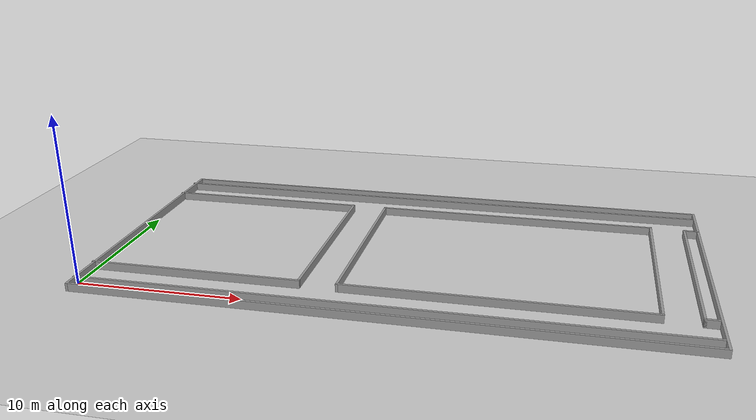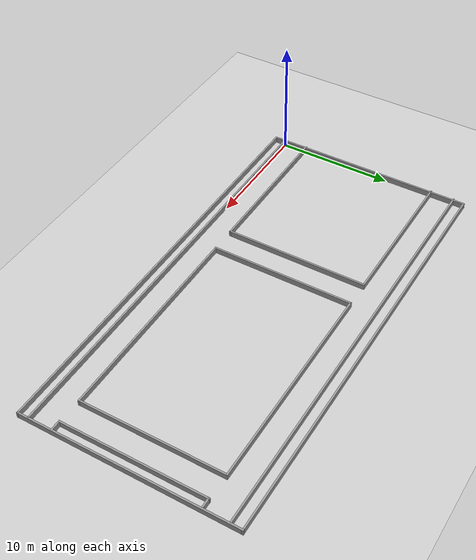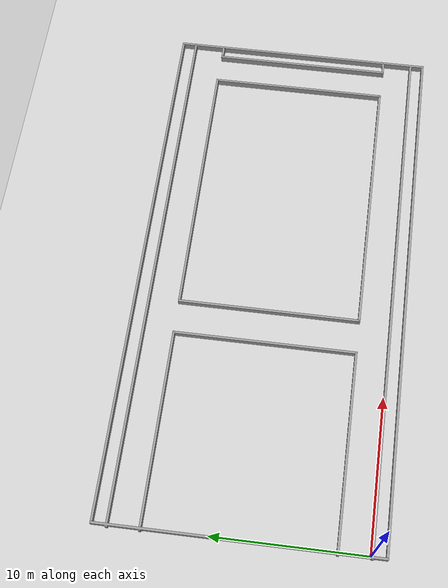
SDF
<sdf version="1.7">
 <world name="default">
  <light name="sun" type="directional">
   <pose>0 0 10 0 -0 0</pose>
   <diffuse>0.8 0.8 0.8 1</diffuse>
   <specular>0.2 0.2 0.2 1</specular>
   <attenuation>
    <range>1000</range>
    <constant>0.9</constant>
    <linear>0.01</linear>
    <quadratic>0.001</quadratic>
   </attenuation>
   <direction>-0.5 0.1 -0.9</direction>
   <spot><inner_angle>0</inner_angle><outer_angle>0</outer_angle><falloff>0</falloff></spot>
  </light>
  <model name="ground_plane">
   <static>1</static>
   <link name="link">
    <collision name="collision">
     <geometry><plane><normal>0 0 1</normal><size>100 100</size></plane></geometry>
     <surface>
      <contact><collide_bitmask>65535</collide_bitmask></contact>
      <friction><ode><mu>100</mu><mu2>50</mu2></ode></friction>
     </surface>
    </collision>
    <visual name="visual">
     <cast_shadows>0</cast_shadows>
     <geometry><plane><normal>0 0 1</normal><size>100 100</size></plane></geometry>
     <material>
      <script><uri>file://media/materials/scripts/gazebo.material</uri><name>Gazebo/Grey</name></script>
     </material>
    </visual>
   </link>
  </model>
  <gravity>0 0 -9.8</gravity>
  <magnetic_field>6e-06 2.3e-05 -4.2e-05</magnetic_field>
  <atmosphere type="adiabatic"/>
  <physics type="ode">
   <max_step_size>0.001</max_step_size>
   <real_time_factor>1</real_time_factor>
   <real_time_update_rate>1000</real_time_update_rate>
  </physics>
  <scene><ambient>0.4 0.4 0.4 1</ambient><background>0.7 0.7 0.7 1</background><shadows>1</shadows></scene>
  <spherical_coordinates>
   <surface_model>EARTH_WGS84</surface_model>
   <latitude_deg>0</latitude_deg>
   <longitude_deg>0</longitude_deg>
   <elevation>0</elevation>
   <heading_deg>0</heading_deg>
  </spherical_coordinates>
  <model name="vfeld.world">
   <pose>17.7996 8.0835 -1 0 -0 0</pose>
   <link name="Wall_10">
    <collision name="Wall_10_Collision">
     <geometry><box><size>18.25 0.15 0.5</size></box></geometry>
     <pose>0 0 1.25 0 -0 0</pose>
    </collision>
    <visual name="Wall_10_Visual">
     <pose>0 0 1.25 0 -0 0</pose>
     <geometry><box><size>18.25 0.15 0.5</size></box></geometry>
     <material>
      <script><uri>file://media/materials/scripts/gazebo.material</uri><name>Gazebo/Grey</name></script>
      <ambient>1 1 1 1</ambient>
     </material>
     <meta><layer>0</layer></meta>
    </visual>
    <pose>17.9754 0 0 0 -0 -1.5708</pose>
   </link>
   <link name="Wall_11">
    <collision name="Wall_11_Collision">
     <geometry><box><size>36 0.15 0.5</size></box></geometry>
     <pose>0 0 1.25 0 -0 0</pose>
    </collision>
    <visual name="Wall_11_Visual">
     <pose>0 0 1.25 0 -0 0</pose>
     <geometry><box><size>36 0.15 0.5</size></box></geometry>
     <material>
      <script><uri>file://media/materials/scripts/gazebo.material</uri><name>Gazebo/Grey</name></script>
      <ambient>1 1 1 1</ambient>
     </material>
     <meta><layer>0</layer></meta>
    </visual>
    <pose>0.050444 -9.05 0 0 -0 3.14159</pose>
   </link>
   <link name="Wall_12">
    <collision name="Wall_12_Collision">
     <geometry><box><size>18.25 0.15 0.5</size></box></geometry>
     <pose>0 0 1.25 0 -0 0</pose>
    </collision>
    <visual name="Wall_12_Visual">
     <pose>0 0 1.25 0 -0 0</pose>
     <geometry><box><size>18.25 0.15 0.5</size></box></geometry>
     <material>
      <script><uri>file://media/materials/scripts/gazebo.material</uri><name>Gazebo/Grey</name></script>
      <ambient>1 1 1 1</ambient>
     </material>
     <meta><layer>0</layer></meta>
    </visual>
    <pose>-17.8746 0 0 0 -0 1.5708</pose>
   </link>
   <link name="Wall_13">
    <collision name="Wall_13_Collision">
     <geometry><box><size>36 0.15 0.5</size></box></geometry>
     <pose>0 0 1.25 0 -0 0</pose>
    </collision>
    <visual name="Wall_13_Visual">
     <pose>0 0 1.25 0 -0 0</pose>
     <geometry><box><size>36 0.15 0.5</size></box></geometry>
     <material>
      <script><uri>file://media/materials/scripts/gazebo.material</uri><name>Gazebo/Grey</name></script>
      <ambient>1 1 1 1</ambient>
     </material>
     <meta><layer>0</layer></meta>
    </visual>
    <pose>0.050444 9.05 0 0 -0 0</pose>
   </link>
   <link name="Wall_15">
    <collision name="Wall_15_Collision">
     <geometry><box><size>36 0.15 0.5</size></box></geometry>
     <pose>0 0 1.25 0 -0 0</pose>
    </collision>
    <visual name="Wall_15_Visual">
     <pose>0 0 1.25 0 -0 0</pose>
     <geometry><box><size>36 0.15 0.5</size></box></geometry>
     <material>
      <script><uri>file://media/materials/scripts/gazebo.material</uri><name>Gazebo/Grey</name></script>
      <ambient>1 1 1 1</ambient>
     </material>
     <meta><layer>0</layer></meta>
    </visual>
    <pose>-0.050445 8.09916 0 0 -0 0</pose>
   </link>
   <link name="Wall_17">
    <collision name="Wall_17_Collision">
     <geometry><box><size>13 0.15 0.5</size></box></geometry>
     <pose>0 0 1.25 0 -0 0</pose>
    </collision>
    <visual name="Wall_17_Visual">
     <pose>0 0 1.25 0 -0 0</pose>
     <geometry><box><size>13 0.15 0.5</size></box></geometry>
     <material>
      <script><uri>file://media/materials/scripts/gazebo.material</uri><name>Gazebo/Grey</name></script>
      <ambient>1 1 1 1</ambient>
     </material>
     <meta><layer>0</layer></meta>
    </visual>
    <pose>-11.5363 6.04108 0 0 -0 0</pose>
   </link>
   <link name="Wall_18">
    <collision name="Wall_18_Collision">
     <geometry><box><size>12.25 0.15 0.5</size></box></geometry>
     <pose>0 0 1.25 0 -0 0</pose>
    </collision>
    <visual name="Wall_18_Visual">
     <pose>0 0 1.25 0 -0 0</pose>
     <geometry><box><size>12.25 0.15 0.5</size></box></geometry>
     <material>
      <script><uri>file://media/materials/scripts/gazebo.material</uri><name>Gazebo/Grey</name></script>
      <ambient>1 1 1 1</ambient>
     </material>
     <meta><layer>0</layer></meta>
    </visual>
    <pose>-5.11132 -0.008923 0 0 -0 -1.5708</pose>
   </link>
   <link name="Wall_19">
    <collision name="Wall_19_Collision">
     <geometry><box><size>13 0.15 0.5</size></box></geometry>
     <pose>0 0 1.25 0 -0 0</pose>
    </collision>
    <visual name="Wall_19_Visual">
     <pose>0 0 1.25 0 -0 0</pose>
     <geometry><box><size>13 0.15 0.5</size></box></geometry>
     <material>
      <script><uri>file://media/materials/scripts/gazebo.material</uri><name>Gazebo/Grey</name></script>
      <ambient>1 1 1 1</ambient>
     </material>
     <meta><layer>0</layer></meta>
    </visual>
    <pose>-11.5363 -6.05892 0 0 -0 3.14159</pose>
   </link>
   <link name="Wall_21">
    <collision name="Wall_21_Collision">
     <geometry><box><size>36 0.15 0.5</size></box></geometry>
     <pose>0 0 1.25 0 -0 0</pose>
    </collision>
    <visual name="Wall_21_Visual">
     <pose>0 0 1.25 0 -0 0</pose>
     <geometry><box><size>36 0.15 0.5</size></box></geometry>
     <material>
      <script><uri>file://media/materials/scripts/gazebo.material</uri><name>Gazebo/Grey</name></script>
      <ambient>1 1 1 1</ambient>
     </material>
     <meta><layer>0</layer></meta>
    </visual>
    <pose>-0.01293 -8.15911 0 0 -0 0</pose>
   </link>
   <link name="Wall_23">
    <collision name="Wall_23_Collision">
     <geometry><box><size>1 0.15 0.5</size></box></geometry>
     <pose>0 0 1.25 0 -0 0</pose>
    </collision>
    <visual name="Wall_23_Visual">
     <pose>0 0 1.25 0 -0 0</pose>
     <geometry><box><size>1 0.15 0.5</size></box></geometry>
     <material>
      <script><uri>file://media/materials/scripts/gazebo.material</uri><name>Gazebo/Grey</name></script>
      <ambient>1 1 1 1</ambient>
     </material>
     <meta><layer>0</layer></meta>
    </visual>
    <pose>17.5469 -6.12383 0 0 -0 3.14159</pose>
   </link>
   <link name="Wall_24">
    <collision name="Wall_24_Collision">
     <geometry><box><size>12.25 0.15 0.5</size></box></geometry>
     <pose>0 0 1.25 0 -0 0</pose>
    </collision>
    <visual name="Wall_24_Visual">
     <pose>0 0 1.25 0 -0 0</pose>
     <geometry><box><size>12.25 0.15 0.5</size></box></geometry>
     <material>
      <script><uri>file://media/materials/scripts/gazebo.material</uri><name>Gazebo/Grey</name></script>
      <ambient>1 1 1 1</ambient>
     </material>
     <meta><layer>0</layer></meta>
    </visual>
    <pose>17.1219 -0.07383 0 0 -0 1.5708</pose>
   </link>
   <link name="Wall_25">
    <collision name="Wall_25_Collision">
     <geometry><box><size>1 0.15 0.5</size></box></geometry>
     <pose>0 0 1.25 0 -0 0</pose>
    </collision>
    <visual name="Wall_25_Visual">
     <pose>0 0 1.25 0 -0 0</pose>
     <geometry><box><size>1 0.15 0.5</size></box></geometry>
     <material>
      <script><uri>file://media/materials/scripts/gazebo.material</uri><name>Gazebo/Grey</name></script>
      <ambient>1 1 1 1</ambient>
     </material>
     <meta><layer>0</layer></meta>
    </visual>
    <pose>17.5469 5.97617 0 0 -0 0</pose>
   </link>
   <link name="Wall_27">
    <collision name="Wall_27_Collision">
     <geometry><box><size>12.25 0.15 0.5</size></box></geometry>
     <pose>0 0 1.25 0 -0 0</pose>
    </collision>
    <visual name="Wall_27_Visual">
     <pose>0 0 1.25 0 -0 0</pose>
     <geometry><box><size>12.25 0.15 0.5</size></box></geometry>
     <material>
      <script><uri>file://media/materials/scripts/gazebo.material</uri><name>Gazebo/Grey</name></script>
      <ambient>1 1 1 1</ambient>
     </material>
     <meta><layer>0</layer></meta>
    </visual>
    <pose>15.0009 -0.008923 0 0 -0 -1.5708</pose>
   </link>
   <link name="Wall_28">
    <collision name="Wall_28_Collision">
     <geometry><box><size>18 0.15 0.5</size></box></geometry>
     <pose>0 0 1.25 0 -0 0</pose>
    </collision>
    <visual name="Wall_28_Visual">
     <pose>0 0 1.25 0 -0 0</pose>
     <geometry><box><size>18 0.15 0.5</size></box></geometry>
     <material>
      <script><uri>file://media/materials/scripts/gazebo.material</uri><name>Gazebo/Grey</name></script>
      <ambient>1 1 1 1</ambient>
     </material>
     <meta><layer>0</layer></meta>
    </visual>
    <pose>6.0759 -6.05892 0 0 -0 3.14159</pose>
   </link>
   <link name="Wall_29">
    <collision name="Wall_29_Collision">
     <geometry><box><size>12.25 0.15 0.5</size></box></geometry>
     <pose>0 0 1.25 0 -0 0</pose>
    </collision>
    <visual name="Wall_29_Visual">
     <pose>0 0 1.25 0 -0 0</pose>
     <geometry><box><size>12.25 0.15 0.5</size></box></geometry>
     <material>
      <script><uri>file://media/materials/scripts/gazebo.material</uri><name>Gazebo/Grey</name></script>
      <ambient>1 1 1 1</ambient>
     </material>
     <meta><layer>0</layer></meta>
    </visual>
    <pose>-2.8491 -0.008923 0 0 -0 1.5708</pose>
   </link>
   <link name="Wall_30">
    <collision name="Wall_30_Collision">
     <geometry><box><size>18 0.15 0.5</size></box></geometry>
     <pose>0 0 1.25 0 -0 0</pose>
    </collision>
    <visual name="Wall_30_Visual">
     <pose>0 0 1.25 0 -0 0</pose>
     <geometry><box><size>18 0.15 0.5</size></box></geometry>
     <material>
      <script><uri>file://media/materials/scripts/gazebo.material</uri><name>Gazebo/Grey</name></script>
      <ambient>1 1 1 1</ambient>
     </material>
     <meta><layer>0</layer></meta>
    </visual>
    <pose>6.0759 6.04108 0 0 -0 0</pose>
   </link>
   <static>1</static>
  </model>
 </world>
</sdf>
